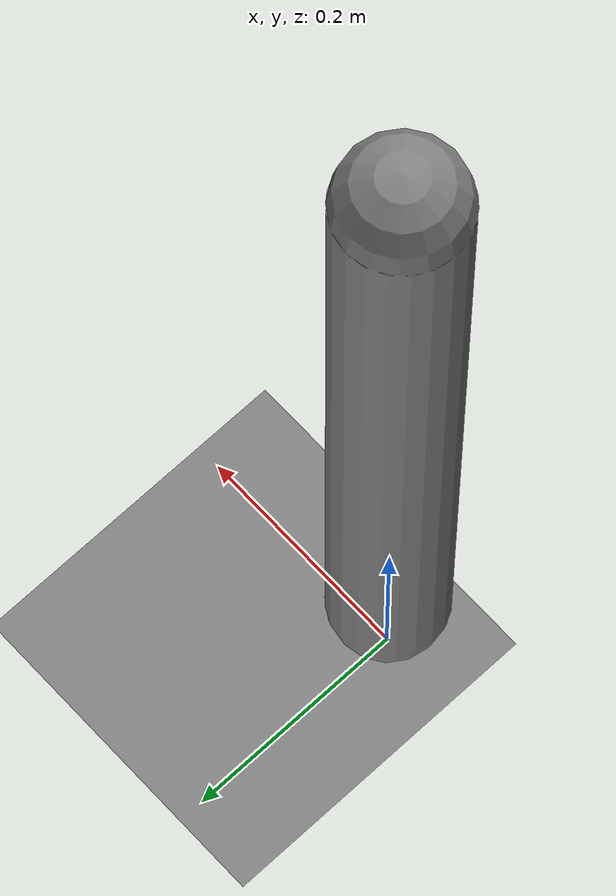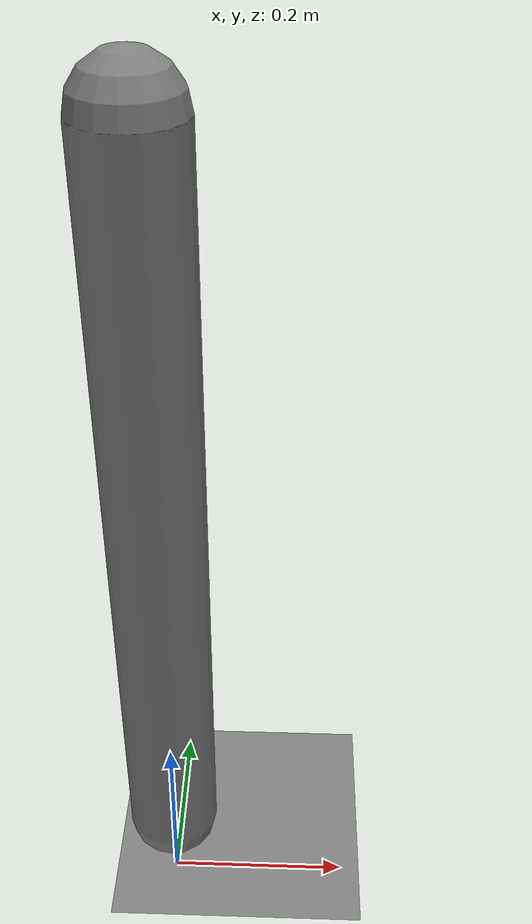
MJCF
<mujoco model="cross_coupling">
            <option gravity="0 0 -9.81" solver="PGS" cone="elliptic"
                    iterations="200" noslip_iterations="50" noslip_tolerance="1e-12"/>
            <worldbody>
                <body pos="0 0 0.5">
                    <joint type="hinge" axis="0 1 0" limited="true" range="-45 45"
                           frictionloss="0.1"/>
                    <geom type="capsule" size="0.05 0.4" mass="1.0"
                          friction="0.3 0.3 0.005"/>
                </body>
                <geom type="plane" size="5 5 0.1"/>
            </worldbody>
        </mujoco>
